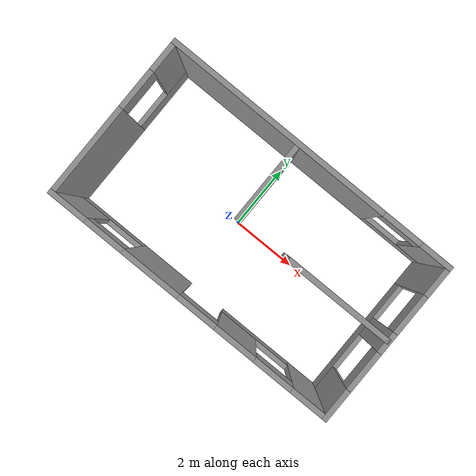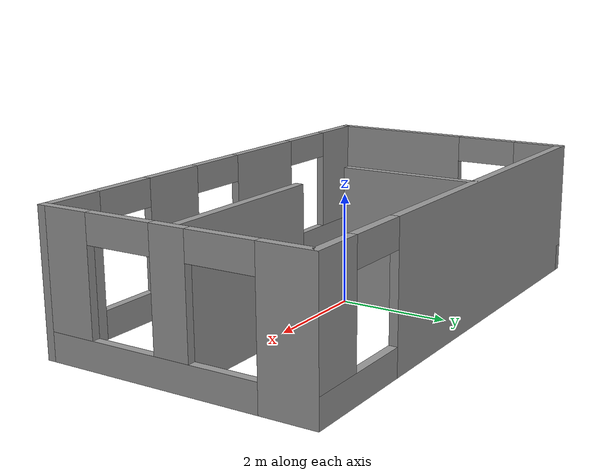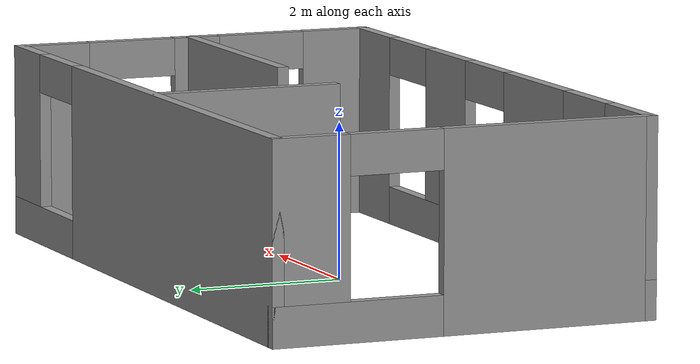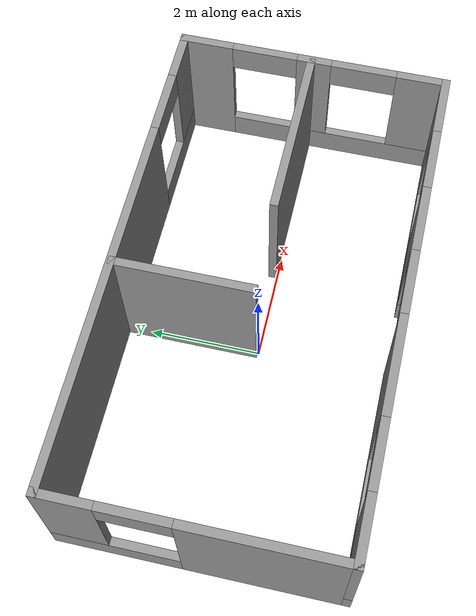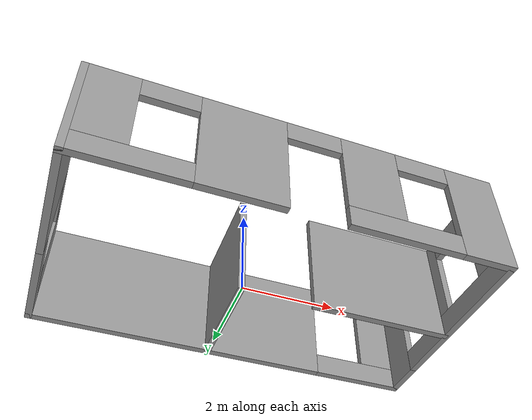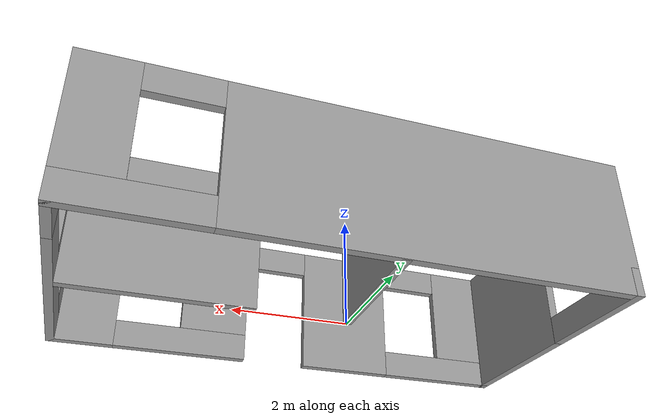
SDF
<?xml version='1.0'?>
<sdf version='1.7'>
  <model name='small_apartment_windows'>
    <pose>0.419183 0.059242 0 0 -0 0</pose>
    <link name='Wall_0'>
      <pose>0 2.425 0 0 -0 0</pose>
      <visual name='Wall_0_Visual_0'>
        <pose>-1.08959 0 1.25 0 -0 0</pose>
        <geometry>
          <box>
            <size>6.82083 0.15 2.5</size>
          </box>
        </geometry>
        <material>
          <script>
            <uri>file://media/materials/scripts/gazebo.material</uri>
            <name>Gazebo/Grey</name>
          </script>
          <ambient>1 1 1 1</ambient>
        </material>
        <meta>
          <layer>0</layer>
        </meta>
      </visual>
      <collision name='Wall_0_Collision_0'>
        <geometry>
          <box>
            <size>6.82083 0.15 2.5</size>
          </box>
        </geometry>
        <pose>-1.08959 0 1.25 0 -0 0</pose>
      </collision>
      <visual name='Wall_0_Visual_1'>
        <pose>3.41041 0 0.25 0 -0 0</pose>
        <geometry>
          <box>
            <size>2.17917 0.15 0.5</size>
          </box>
        </geometry>
        <material>
          <script>
            <uri>file://media/materials/scripts/gazebo.material</uri>
            <name>Gazebo/Grey</name>
          </script>
          <ambient>1 1 1 1</ambient>
        </material>
        <meta>
          <layer>0</layer>
        </meta>
      </visual>
      <collision name='Wall_0_Collision_1'>
        <geometry>
          <box>
            <size>2.17917 0.15 0.5</size>
          </box>
        </geometry>
        <pose>3.41041 0 0.25 0 -0 0</pose>
      </collision>
      <visual name='Wall_0_Visual_2'>
        <pose>4.01041 0 1.5 0 -0 0</pose>
        <geometry>
          <box>
            <size>0.979174 0.15 2</size>
          </box>
        </geometry>
        <material>
          <script>
            <uri>file://media/materials/scripts/gazebo.material</uri>
            <name>Gazebo/Grey</name>
          </script>
          <ambient>1 1 1 1</ambient>
        </material>
        <meta>
          <layer>0</layer>
        </meta>
      </visual>
      <collision name='Wall_0_Collision_2'>
        <geometry>
          <box>
            <size>0.979174 0.15 2</size>
          </box>
        </geometry>
        <pose>4.01041 0 1.5 0 -0 0</pose>
      </collision>
      <visual name='Wall_0_Visual_3'>
        <pose>2.92083 0 2.25 0 -0 0</pose>
        <geometry>
          <box>
            <size>1.2 0.15 0.5</size>
          </box>
        </geometry>
        <material>
          <script>
            <uri>file://media/materials/scripts/gazebo.material</uri>
            <name>Gazebo/Grey</name>
          </script>
          <ambient>1 1 1 1</ambient>
        </material>
        <meta>
          <layer>0</layer>
        </meta>
      </visual>
      <collision name='Wall_0_Collision_3'>
        <geometry>
          <box>
            <size>1.2 0.15 0.5</size>
          </box>
        </geometry>
        <pose>2.92083 0 2.25 0 -0 0</pose>
      </collision>
    </link>
    <link name='Wall_1'>
      <pose>4.425 0 0 0 -0 -1.5708</pose>
      <visual name='Wall_1_Visual_0'>
        <pose>-2.00168 0 1.25 0 -0 0</pose>
        <geometry>
          <box>
            <size>0.996635 0.15 2.5</size>
          </box>
        </geometry>
        <material>
          <script>
            <uri>file://media/materials/scripts/gazebo.material</uri>
            <name>Gazebo/Grey</name>
          </script>
          <ambient>1 1 1 1</ambient>
        </material>
        <meta>
          <layer>0</layer>
        </meta>
      </visual>
      <collision name='Wall_1_Collision_0'>
        <geometry>
          <box>
            <size>0.996635 0.15 2.5</size>
          </box>
        </geometry>
        <pose>-2.00168 0 1.25 0 -0 0</pose>
      </collision>
      <visual name='Wall_1_Visual_1'>
        <pose>0.498318 0 0.25 0 -0 0</pose>
        <geometry>
          <box>
            <size>4.00336 0.15 0.5</size>
          </box>
        </geometry>
        <material>
          <script>
            <uri>file://media/materials/scripts/gazebo.material</uri>
            <name>Gazebo/Grey</name>
          </script>
          <ambient>1 1 1 1</ambient>
        </material>
        <meta>
          <layer>0</layer>
        </meta>
      </visual>
      <collision name='Wall_1_Collision_1'>
        <geometry>
          <box>
            <size>4.00336 0.15 0.5</size>
          </box>
        </geometry>
        <pose>0.498318 0 0.25 0 -0 0</pose>
      </collision>
      <visual name='Wall_1_Visual_2'>
        <pose>0.014864 0 1.5 0 -0 0</pose>
        <geometry>
          <box>
            <size>0.636457 0.15 2</size>
          </box>
        </geometry>
        <material>
          <script>
            <uri>file://media/materials/scripts/gazebo.material</uri>
            <name>Gazebo/Grey</name>
          </script>
          <ambient>1 1 1 1</ambient>
        </material>
        <meta>
          <layer>0</layer>
        </meta>
      </visual>
      <collision name='Wall_1_Collision_2'>
        <geometry>
          <box>
            <size>0.636457 0.15 2</size>
          </box>
        </geometry>
        <pose>0.014864 0 1.5 0 -0 0</pose>
      </collision>
      <visual name='Wall_1_Visual_3'>
        <pose>2.01655 0 1.5 0 -0 0</pose>
        <geometry>
          <box>
            <size>0.966908 0.15 2</size>
          </box>
        </geometry>
        <material>
          <script>
            <uri>file://media/materials/scripts/gazebo.material</uri>
            <name>Gazebo/Grey</name>
          </script>
          <ambient>1 1 1 1</ambient>
        </material>
        <meta>
          <layer>0</layer>
        </meta>
      </visual>
      <collision name='Wall_1_Collision_3'>
        <geometry>
          <box>
            <size>0.966908 0.15 2</size>
          </box>
        </geometry>
        <pose>2.01655 0 1.5 0 -0 0</pose>
      </collision>
      <visual name='Wall_1_Visual_4'>
        <pose>-0.903365 0 2.25 0 -0 0</pose>
        <geometry>
          <box>
            <size>1.2 0.15 0.5</size>
          </box>
        </geometry>
        <material>
          <script>
            <uri>file://media/materials/scripts/gazebo.material</uri>
            <name>Gazebo/Grey</name>
          </script>
          <ambient>1 1 1 1</ambient>
        </material>
        <meta>
          <layer>0</layer>
        </meta>
      </visual>
      <collision name='Wall_1_Collision_4'>
        <geometry>
          <box>
            <size>1.2 0.15 0.5</size>
          </box>
        </geometry>
        <pose>-0.903365 0 2.25 0 -0 0</pose>
      </collision>
      <visual name='Wall_1_Visual_5'>
        <pose>0.933092 0 2.25 0 -0 0</pose>
        <geometry>
          <box>
            <size>1.2 0.15 0.5</size>
          </box>
        </geometry>
        <material>
          <script>
            <uri>file://media/materials/scripts/gazebo.material</uri>
            <name>Gazebo/Grey</name>
          </script>
          <ambient>1 1 1 1</ambient>
        </material>
        <meta>
          <layer>0</layer>
        </meta>
      </visual>
      <collision name='Wall_1_Collision_5'>
        <geometry>
          <box>
            <size>1.2 0.15 0.5</size>
          </box>
        </geometry>
        <pose>0.933092 0 2.25 0 -0 0</pose>
      </collision>
    </link>
    <link name='Wall_2'>
      <pose>0 -2.425 0 0 -0 3.14159</pose>
      <visual name='Wall_2_Visual_0'>
        <pose>-3.91422 0 1.25 0 -0 0</pose>
        <geometry>
          <box>
            <size>1.17156 0.15 2.5</size>
          </box>
        </geometry>
        <material>
          <script>
            <uri>file://media/materials/scripts/gazebo.material</uri>
            <name>Gazebo/Grey</name>
          </script>
          <ambient>1 1 1 1</ambient>
        </material>
        <meta>
          <layer>0</layer>
        </meta>
      </visual>
      <collision name='Wall_2_Collision_0'>
        <geometry>
          <box>
            <size>1.17156 0.15 2.5</size>
          </box>
        </geometry>
        <pose>-3.91422 0 1.25 0 -0 0</pose>
      </collision>
      <visual name='Wall_2_Visual_1'>
        <pose>1.23306 0 1.25 0 -0 0</pose>
        <geometry>
          <box>
            <size>1.7908 0.15 2.5</size>
          </box>
        </geometry>
        <material>
          <script>
            <uri>file://media/materials/scripts/gazebo.material</uri>
            <name>Gazebo/Grey</name>
          </script>
          <ambient>1 1 1 1</ambient>
        </material>
        <meta>
          <layer>0</layer>
        </meta>
      </visual>
      <collision name='Wall_2_Collision_1'>
        <geometry>
          <box>
            <size>1.7908 0.15 2.5</size>
          </box>
        </geometry>
        <pose>1.23306 0 1.25 0 -0 0</pose>
      </collision>
      <visual name='Wall_2_Visual_2'>
        <pose>-2.09539 0 0.25 0 -0 0</pose>
        <geometry>
          <box>
            <size>2.4661 0.15 0.5</size>
          </box>
        </geometry>
        <material>
          <script>
            <uri>file://media/materials/scripts/gazebo.material</uri>
            <name>Gazebo/Grey</name>
          </script>
          <ambient>1 1 1 1</ambient>
        </material>
        <meta>
          <layer>0</layer>
        </meta>
      </visual>
      <collision name='Wall_2_Collision_2'>
        <geometry>
          <box>
            <size>2.4661 0.15 0.5</size>
          </box>
        </geometry>
        <pose>-2.09539 0 0.25 0 -0 0</pose>
      </collision>
      <visual name='Wall_2_Visual_3'>
        <pose>3.31423 0 0.25 0 -0 0</pose>
        <geometry>
          <box>
            <size>2.37154 0.15 0.5</size>
          </box>
        </geometry>
        <material>
          <script>
            <uri>file://media/materials/scripts/gazebo.material</uri>
            <name>Gazebo/Grey</name>
          </script>
          <ambient>1 1 1 1</ambient>
        </material>
        <meta>
          <layer>0</layer>
        </meta>
      </visual>
      <collision name='Wall_2_Collision_3'>
        <geometry>
          <box>
            <size>2.37154 0.15 0.5</size>
          </box>
        </geometry>
        <pose>3.31423 0 0.25 0 -0 0</pose>
      </collision>
      <visual name='Wall_2_Visual_4'>
        <pose>-1.49539 0 1.5 0 -0 0</pose>
        <geometry>
          <box>
            <size>1.2661 0.15 2</size>
          </box>
        </geometry>
        <material>
          <script>
            <uri>file://media/materials/scripts/gazebo.material</uri>
            <name>Gazebo/Grey</name>
          </script>
          <ambient>1 1 1 1</ambient>
        </material>
        <meta>
          <layer>0</layer>
        </meta>
      </visual>
      <collision name='Wall_2_Collision_4'>
        <geometry>
          <box>
            <size>1.2661 0.15 2</size>
          </box>
        </geometry>
        <pose>-1.49539 0 1.5 0 -0 0</pose>
      </collision>
      <visual name='Wall_2_Visual_5'>
        <pose>-1.49539 0 1.5 0 -0 0</pose>
        <geometry>
          <box>
            <size>1.2661 0.15 2</size>
          </box>
        </geometry>
        <material>
          <script>
            <uri>file://media/materials/scripts/gazebo.material</uri>
            <name>Gazebo/Grey</name>
          </script>
          <ambient>1 1 1 1</ambient>
        </material>
        <meta>
          <layer>0</layer>
        </meta>
      </visual>
      <collision name='Wall_2_Collision_5'>
        <geometry>
          <box>
            <size>1.2661 0.15 2</size>
          </box>
        </geometry>
        <pose>-1.49539 0 1.5 0 -0 0</pose>
      </collision>
      <visual name='Wall_2_Visual_6'>
        <pose>3.91423 0 1.5 0 -0 0</pose>
        <geometry>
          <box>
            <size>1.17154 0.15 2</size>
          </box>
        </geometry>
        <material>
          <script>
            <uri>file://media/materials/scripts/gazebo.material</uri>
            <name>Gazebo/Grey</name>
          </script>
          <ambient>1 1 1 1</ambient>
        </material>
        <meta>
          <layer>0</layer>
        </meta>
      </visual>
      <collision name='Wall_2_Collision_6'>
        <geometry>
          <box>
            <size>1.17154 0.15 2</size>
          </box>
        </geometry>
        <pose>3.91423 0 1.5 0 -0 0</pose>
      </collision>
      <visual name='Wall_2_Visual_7'>
        <pose>-2.72844 0 2.25 0 -0 0</pose>
        <geometry>
          <box>
            <size>1.2 0.15 0.5</size>
          </box>
        </geometry>
        <material>
          <script>
            <uri>file://media/materials/scripts/gazebo.material</uri>
            <name>Gazebo/Grey</name>
          </script>
          <ambient>1 1 1 1</ambient>
        </material>
        <meta>
          <layer>0</layer>
        </meta>
      </visual>
      <collision name='Wall_2_Collision_7'>
        <geometry>
          <box>
            <size>1.2 0.15 0.5</size>
          </box>
        </geometry>
        <pose>-2.72844 0 2.25 0 -0 0</pose>
      </collision>
      <visual name='Wall_2_Visual_8'>
        <pose>2.72846 0 2.25 0 -0 0</pose>
        <geometry>
          <box>
            <size>1.2 0.15 0.5</size>
          </box>
        </geometry>
        <material>
          <script>
            <uri>file://media/materials/scripts/gazebo.material</uri>
            <name>Gazebo/Grey</name>
          </script>
          <ambient>1 1 1 1</ambient>
        </material>
        <meta>
          <layer>0</layer>
        </meta>
      </visual>
      <collision name='Wall_2_Collision_8'>
        <geometry>
          <box>
            <size>1.2 0.15 0.5</size>
          </box>
        </geometry>
        <pose>2.72846 0 2.25 0 -0 0</pose>
      </collision>
      <visual name='Wall_2_Visual_9'>
        <pose>-0.262337 0 2.25 0 -0 0</pose>
        <geometry>
          <box>
            <size>1.2 0.15 0.5</size>
          </box>
        </geometry>
        <material>
          <script>
            <uri>file://media/materials/scripts/gazebo.material</uri>
            <name>Gazebo/Grey</name>
          </script>
          <ambient>1 1 1 1</ambient>
        </material>
        <meta>
          <layer>0</layer>
        </meta>
      </visual>
      <collision name='Wall_2_Collision_9'>
        <geometry>
          <box>
            <size>1.2 0.15 0.5</size>
          </box>
        </geometry>
        <pose>-0.262337 0 2.25 0 -0 0</pose>
      </collision>
      <visual name='Wall_2_Visual_10'>
        <pose>-0.262337 0 2.25 0 -0 0</pose>
        <geometry>
          <box>
            <size>1.2 0.15 0.5</size>
          </box>
        </geometry>
        <material>
          <script>
            <uri>file://media/materials/scripts/gazebo.material</uri>
            <name>Gazebo/Grey</name>
          </script>
          <ambient>1 1 1 1</ambient>
        </material>
        <meta>
          <layer>0</layer>
        </meta>
      </visual>
      <collision name='Wall_2_Collision_10'>
        <geometry>
          <box>
            <size>1.2 0.15 0.5</size>
          </box>
        </geometry>
        <pose>-0.262337 0 2.25 0 -0 0</pose>
      </collision>
    </link>
    <link name='Wall_3'>
      <pose>-4.425 0 0 0 -0 1.5708</pose>
      <visual name='Wall_3_Visual_0'>
        <pose>-1.09832 0 1.25 0 -0 0</pose>
        <geometry>
          <box>
            <size>2.80336 0.15 2.5</size>
          </box>
        </geometry>
        <material>
          <script>
            <uri>file://media/materials/scripts/gazebo.material</uri>
            <name>Gazebo/Grey</name>
          </script>
          <ambient>1 1 1 1</ambient>
        </material>
        <meta>
          <layer>0</layer>
        </meta>
      </visual>
      <collision name='Wall_3_Collision_0'>
        <geometry>
          <box>
            <size>2.80336 0.15 2.5</size>
          </box>
        </geometry>
        <pose>-1.09832 0 1.25 0 -0 0</pose>
      </collision>
      <visual name='Wall_3_Visual_1'>
        <pose>1.40168 0 0.25 0 -0 0</pose>
        <geometry>
          <box>
            <size>2.19664 0.15 0.5</size>
          </box>
        </geometry>
        <material>
          <script>
            <uri>file://media/materials/scripts/gazebo.material</uri>
            <name>Gazebo/Grey</name>
          </script>
          <ambient>1 1 1 1</ambient>
        </material>
        <meta>
          <layer>0</layer>
        </meta>
      </visual>
      <collision name='Wall_3_Collision_1'>
        <geometry>
          <box>
            <size>2.19664 0.15 0.5</size>
          </box>
        </geometry>
        <pose>1.40168 0 0.25 0 -0 0</pose>
      </collision>
      <visual name='Wall_3_Visual_2'>
        <pose>2.00168 0 1.5 0 -0 0</pose>
        <geometry>
          <box>
            <size>0.996635 0.15 2</size>
          </box>
        </geometry>
        <material>
          <script>
            <uri>file://media/materials/scripts/gazebo.material</uri>
            <name>Gazebo/Grey</name>
          </script>
          <ambient>1 1 1 1</ambient>
        </material>
        <meta>
          <layer>0</layer>
        </meta>
      </visual>
      <collision name='Wall_3_Collision_2'>
        <geometry>
          <box>
            <size>0.996635 0.15 2</size>
          </box>
        </geometry>
        <pose>2.00168 0 1.5 0 -0 0</pose>
      </collision>
      <visual name='Wall_3_Visual_3'>
        <pose>0.903365 0 2.25 0 -0 0</pose>
        <geometry>
          <box>
            <size>1.2 0.15 0.5</size>
          </box>
        </geometry>
        <material>
          <script>
            <uri>file://media/materials/scripts/gazebo.material</uri>
            <name>Gazebo/Grey</name>
          </script>
          <ambient>1 1 1 1</ambient>
        </material>
        <meta>
          <layer>0</layer>
        </meta>
      </visual>
      <collision name='Wall_3_Collision_3'>
        <geometry>
          <box>
            <size>1.2 0.15 0.5</size>
          </box>
        </geometry>
        <pose>0.903365 0 2.25 0 -0 0</pose>
      </collision>
    </link>
    <link name='Wall_5'>
      <collision name='Wall_5_Collision'>
        <geometry>
          <box>
            <size>2.5 0.15 2.5</size>
          </box>
        </geometry>
        <pose>0 0 1.25 0 -0 0</pose>
      </collision>
      <visual name='Wall_5_Visual'>
        <pose>0 0 1.25 0 -0 0</pose>
        <geometry>
          <box>
            <size>2.5 0.15 2.5</size>
          </box>
        </geometry>
        <material>
          <script>
            <uri>file://media/materials/scripts/gazebo.material</uri>
            <name>Gazebo/Grey</name>
          </script>
          <ambient>1 1 1 1</ambient>
        </material>
        <meta>
          <layer>0</layer>
        </meta>
      </visual>
      <pose>-0.425183 1.21476 0 0 -0 -1.5708</pose>
    </link>
    <link name='Wall_8'>
      <collision name='Wall_8_Collision'>
        <geometry>
          <box>
            <size>3.25 0.15 2.5</size>
          </box>
        </geometry>
        <pose>0 0 1.25 0 -0 0</pose>
      </collision>
      <visual name='Wall_8_Visual'>
        <pose>0 0 1.25 0 -0 0</pose>
        <geometry>
          <box>
            <size>3.25 0.15 2.5</size>
          </box>
        </geometry>
        <material>
          <script>
            <uri>file://media/materials/scripts/gazebo.material</uri>
            <name>Gazebo/Grey</name>
          </script>
          <ambient>1 1 1 1</ambient>
        </material>
        <meta>
          <layer>0</layer>
        </meta>
      </visual>
      <pose>2.82281 0.04002 0 0 -0 0</pose>
    </link>
    <static>1</static>
  </model>
</sdf>
